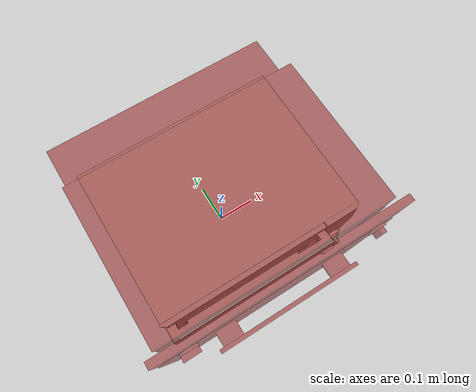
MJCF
<mujoco model="model">
  <compiler angle="radian"/>
  <asset>
    <mesh file="visuals/Body001.obj" name="Body001_vis"/>
    <mesh file="visuals/Door001.obj" name="Door001_vis"/>
    <mesh file="visuals/Door001_Clear.obj" name="Door001_Clear_vis"/>
    <mesh file="visuals/Knob001.obj" name="Knob001_vis"/>
    <mesh file="visuals/Knob002.obj" name="Knob002_vis"/>
    <mesh file="visuals/Shelf001.obj" name="Shelf001_vis"/>
    <texture file="visuals/T_BC001.png" name="Body001_material" type="2d"/>
    <material name="Body001_material" rgba="1 1 1 1.0" texture="Body001_material" shininess="0.5" specular="0.3103448502657381"/>
    <texture file="visuals/T_BC001.png" name="Door001_material" type="2d"/>
    <material name="Door001_material" rgba="1 1 1 1.0" texture="Door001_material" shininess="0.5" specular="0.3103448502657381"/>
    <texture file="visuals/T_BC001.png" name="Door001_Clear_material" type="2d"/>
    <material name="Door001_Clear_material" rgba="1 1 1 0.7272727489471436" texture="Door001_Clear_material" shininess="0.5" specular="0.3103448502657381"/>
    <texture file="visuals/T_BC001.png" name="Knob001_material" type="2d"/>
    <material name="Knob001_material" rgba="1 1 1 1.0" texture="Knob001_material" shininess="0.5" specular="0.3103448502657381"/>
    <texture file="visuals/T_BC001.png" name="Knob002_material" type="2d"/>
    <material name="Knob002_material" rgba="1 1 1 1.0" texture="Knob002_material" shininess="0.5" specular="0.3103448502657381"/>
    <texture file="visuals/T_BC001.png" name="Shelf001_material" type="2d"/>
    <material name="Shelf001_material" rgba="1 1 1 1.0" texture="Shelf001_material" shininess="0.5" specular="0.3103448502657381"/>
  </asset>
  <default>
    <default class="visual">
      <geom conaffinity="0" contype="0" group="1" type="mesh"/>
    </default>
    <default class="collision">
      <geom group="0" rgba="0.5 0 0 0.5"/>
    </default>
    <default class="spawn">
      <geom group="0" rgba="1 1 1 0.5" contype="0" conaffinity="0"/>
      <site group="0" rgba="1 1 1 0.5"/>
    </default>
    <default class="region">
      <geom group="1" conaffinity="0" contype="0" rgba="0 1 0 0"/>
    </default>
  </default>
  <worldbody>
    <body>
      <body name="object">
        <geom mesh="Body001_vis" type="mesh" solimp="0.998 0.998 0.001" solref="0.001 1" density="100" friction="0.95 0.3 0.1" class="visual" material="Body001_material"/>
        <geom class="collision" type="box" pos="-0.002272 0.240003 -0.041929" size="0.3014715015888214 0.0676516443490982 0.25934097170829773" quat="1.0 0.0 0.0 0.0"/>
        <geom class="collision" type="box" pos="-0.002272 -0.030982 0.209314" size="0.2999154031276703 0.19902381300926208 0.07599905133247375" quat="1.0 0.0 0.0 0.0"/>
        <geom class="collision" type="box" pos="0.274173 -0.030772 -0.041928" size="0.025027327239513397 0.20048335194587708 0.2593408524990082" quat="1.0 0.0 0.0 0.0"/>
        <geom class="collision" type="box" pos="-0.278716 -0.030772 -0.041929" size="0.025027446448802948 0.20048335194587708 0.25934088230133057" quat="1.0 0.0 0.0 0.0"/>
        <geom class="collision" type="box" pos="-0.002272 -0.028910 -0.274224" size="0.2511892020702362 0.2017003446817398 0.027045827358961105" quat="1.0 0.0 0.0 0.0"/>
        <geom class="collision" type="box" pos="-0.000736 -0.248151 0.242266" size="0.32137104868888855 0.009143580682575703 0.05586802959442139" quat="1.0 0.0 0.0 0.0"/>
        <geom class="collision" type="box" pos="-0.242932 -0.025404 -0.062074" size="0.014099608175456524 0.18951387703418732 0.002089693443849683" quat="1.0 0.0 0.0 0.0"/>
        <geom class="collision" type="box" pos="0.240381 -0.025404 -0.062074" size="0.014099608175456524 0.1895138919353485 0.002089692745357752" quat="1.0 0.0 0.0 0.0"/>
        <geom class="collision" type="box" pos="-0.310713 -0.247314 -0.059298" size="0.012375002726912498 0.008304914459586143 0.2276533544063568" quat="1.0 0.0 0.0 0.0"/>
        <geom class="collision" type="box" pos="0.309455 -0.247314 -0.059298" size="0.01118071936070919 0.008304913528263569 0.22765332460403442" quat="1.0 0.0 0.0 0.0"/>
        <body name="Door001">
          <joint axis="1.0 0.0 0.0" pos="-0.001229 -0.259781 -0.290038" limited="true" name="Door001_joint" range="0.0 1.15" type="hinge" damping="5" frictionloss="1" armature=".01" stiffness="0.05"/>
          <geom mesh="Door001_vis" type="mesh" solimp="0.998 0.998 0.001" solref="0.001 1" density="100" friction="0.95 0.3 0.1" class="visual" material="Door001_material"/>
          <geom class="collision" type="box" pos="-0.002096 -0.246125 -0.059298" size="0.29425370693206787 0.013306054286658764 0.22765375673770905" quat="1.0 0.0 0.0 0.0"/>
          <geom class="collision" type="box" pos="-0.150810 -0.278072 0.135109" size="0.02738523669540882 0.02142714150249958 0.006111631635576487" quat="1.0 0.0 0.0 0.0"/>
          <geom class="collision" type="box" pos="0.150866 -0.278072 0.135109" size="0.02738523669540882 0.021427137777209282 0.006111630704253912" quat="1.0 0.0 0.0 0.0"/>
          <geom class="collision" type="box" pos="0.000019 -0.302496 0.138786" size="0.1898331493139267 0.005006261169910431 0.017416728660464287" quat="1.0 0.0 0.0 0.0"/>
          <geom class="collision" type="box" pos="-0.000575 -0.258750 -0.057755" size="0.3212108016014099 0.0010059484047815204 0.23184387385845184" quat="1.0 0.0 0.0 0.0"/>
          <body name="Door001_Clear">
            <geom mesh="Door001_Clear_vis" type="mesh" solimp="0.998 0.998 0.001" solref="0.001 1" density="100" friction="0.95 0.3 0.1" class="visual" material="Door001_Clear_material"/>
          </body>
        </body>
        <body name="Knob001">
          <joint axis="0.0 1.0 0.0" pos="-0.241710 -0.265129 0.243801" limited="true" name="Knob001_joint" range="0.0 5.235987755982989" type="hinge" damping="0.05" armature="0.001"/>
          <geom mesh="Knob001_vis" type="mesh" solimp="0.998 0.998 0.001" solref="0.001 1" density="100" friction="0.95 0.3 0.1" class="visual" material="Knob001_material"/>
          <geom class="collision" type="cylinder" pos="-0.241953 -0.263120 0.243976" size="0.022314438596367836 0.0030426383018493652" quat="0.7071067094802856 0.7071068286895752 0.0 0.0"/>
          <geom class="collision" type="box" pos="-0.242033 -0.272933 0.243890" size="0.021192438900470734 0.007464584894478321 0.005427062511444092" quat="1.0 0.0 0.0 0.0"/>
        </body>
        <body name="Knob002">
          <joint axis="0.0 1.0 0.0" pos="0.238280 -0.265129 0.243801" limited="true" name="Knob002_joint" range="0.0 5.585053606381854" type="hinge" damping="0.05" armature="0.001"/>
          <geom mesh="Knob002_vis" type="mesh" solimp="0.998 0.998 0.001" solref="0.001 1" density="100" friction="0.95 0.3 0.1" class="visual" material="Knob002_material"/>
          <geom class="collision" type="cylinder" pos="0.238393 -0.263120 0.243976" size="0.022314438596367836 0.0030426383018493652" quat="0.7071067094802856 0.7071068286895752 0.0 0.0"/>
          <geom class="collision" type="box" pos="0.238387 -0.272933 0.243890" size="0.005545774474740028 0.007464569993317127 0.021192437037825584" quat="1.0 0.0 0.0 0.0"/>
        </body>
        <body name="Shelf001">
          <joint axis="0.0 -1.0 0.0" pos="-0.001222 -0.025212 -0.066909" limited="true" name="Shelf001_joint" range="0.0 0.35" type="slide" damping="1" frictionloss="1" armature=".01" stiffness="0.05"/>
          <geom mesh="Shelf001_vis" type="mesh" solimp="0.998 0.998 0.001" solref="0.001 1" density="100" friction="0.95 0.3 0.1" class="visual" material="Shelf001_material"/>
          <geom class="collision" type="box" pos="-0.001384 -0.025404 -0.071384" size="0.19272035360336304 0.1895138919353485 0.00446081068366766" quat="1.0 0.0 0.0 0.0"/>
          <geom class="collision" type="box" pos="-0.222770 -0.025404 -0.057623" size="0.014099613763391972 0.18951386213302612 0.0019992238376289606" quat="1.0 0.0 0.0 0.0"/>
          <geom class="collision" type="box" pos="0.219716 -0.025404 -0.057623" size="0.014099613763391972 0.18951386213302612 0.0019992231391370296" quat="1.0 0.0 0.0 0.0"/>
          <geom class="collision" type="box" pos="-0.203089 -0.025404 -0.064694" size="0.18951386213302612 0.001999214058741927 0.014099583961069584" quat="0.6227294206619263 -0.3349742293357849 -0.3349745273590088 0.6227297782897949"/>
          <geom class="collision" type="box" pos="0.200601 -0.025404 -0.065260" size="0.18951386213302612 0.001999214058741927 0.014099583961069584" quat="0.31096601486206055 -0.6350590586662292 -0.6350591778755188 0.31096622347831726"/>
        </body>
        <geom class="region" name="reg_main" type="box" pos="-0.0012264999999999915 0.025180499999999995 -0.001567999999999986" size="0.3218615 0.2824745 0.299702"/>
        <geom class="region" name="reg_int" type="box" pos="-0.001892999999999992 -0.0192475 -0.056584999999999996" size="0.242189 0.1962735 0.181423"/>
      </body>
    </body>
  </worldbody>
  <actuator>
    <motor name="Door001_joint_actuator" joint="Door001_joint" gear="30"/>
    <motor name="Knob001_joint_actuator" joint="Knob001_joint" gear="10"/>
    <motor name="Knob002_joint_actuator" joint="Knob002_joint" gear="10"/>
    <motor name="Shelf001_joint_actuator" joint="Shelf001_joint" gear="10"/>
  </actuator>
</mujoco>
